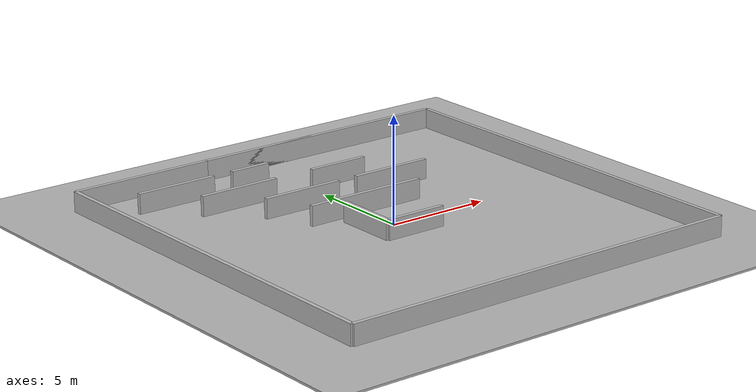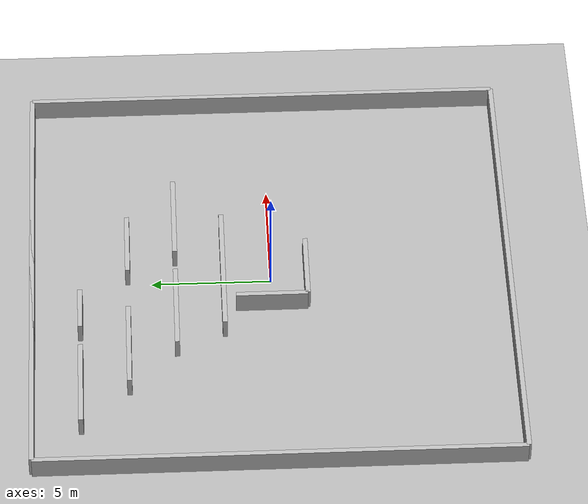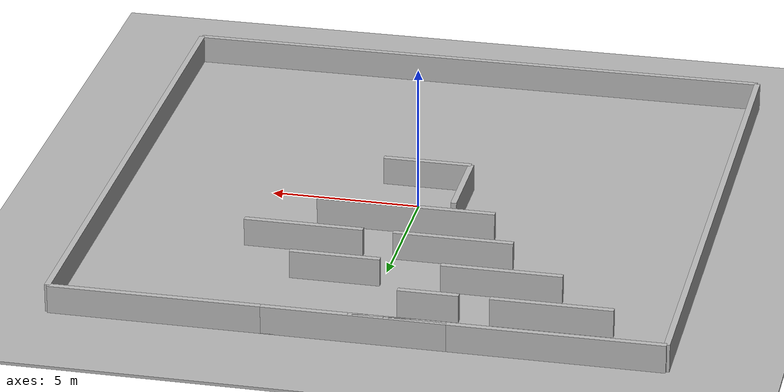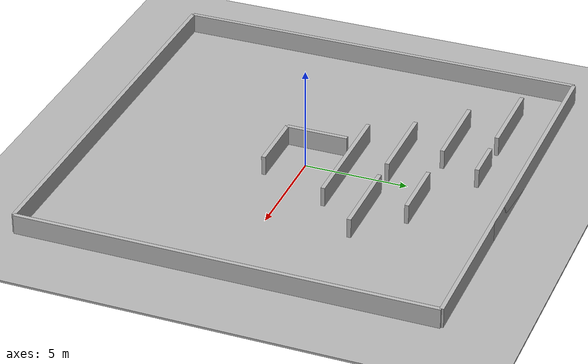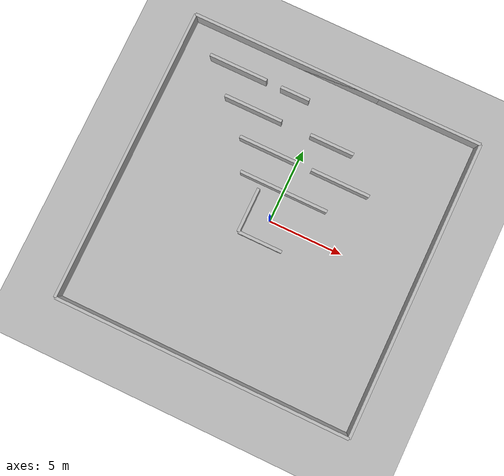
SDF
<?xml version="1.0"?>
<sdf version="1.8">
  <world name="maze_world">
  <plugin filename="libignition-gazebo-imu-system.so"
        name="ignition::gazebo::systems::Imu">
  </plugin>

    <plugin
      filename="libignition-gazebo-sensors-system.so"
      name="ignition::gazebo::systems::Sensors">
      <render_engine>ogre2</render_engine>
    </plugin>

  <plugin
        filename="ignition-gazebo-physics-system"
        name="ignition::gazebo::systems::Physics">
    </plugin>

    <plugin
        filename="ignition-gazebo-scene-broadcaster-system"
        name="ignition::gazebo::systems::SceneBroadcaster">
    </plugin>

    <plugin filename="ignition-gazebo-user-commands-system"
        name="ignition::gazebo::systems::UserCommands"/>

    <model name="ground_plane">
      <static>true</static>
      <link name="link">
        <collision name="collision">
          <geometry>
            <box>
              <size>100 100 0.1</size>
            </box>
          </geometry>
        </collision>
        <visual name="visual">
          <geometry>
            <box>
              <size>100 100 0.1</size>
            </box>
          </geometry>
          <material>
            <ambient>0.7 0.7 0.7 1.0</ambient>
            <diffuse>0.7 0.7 0.7 1.0</diffuse>
          </material>
        </visual>
      </link>
    </model>

<light name="sun" type="directional">
  <pose>0 0 100 0 0 0</pose>
  <diffuse>1 1 1 1</diffuse>
  <specular>0.5 0.5 0.5 1</specular>
  <attenuation>
    <constant>0.0</constant>
    <linear>0.0</linear>
    <quadratic>0.0</quadratic>
  </attenuation>
  <direction>-0.5 -0.5 -1</direction>
</light>

    <!-- Outer frame -->
    <model name="outer_top">
      <static>true</static>
      <link name="link">
        <pose>0 10 0.5 0 0 0</pose>
        <collision name="col"><geometry><box><size>20 0.2 1</size></box></geometry></collision>
        <visual name="vis"><geometry><box><size>20 0.2 1</size></box></geometry></visual>
      </link>
    </model>

    <model name="outer_bottom">
      <static>true</static>
      <link name="link">
        <pose>0 -10 0.5 0 0 0</pose>
        <collision name="col"><geometry><box><size>20 0.2 1</size></box></geometry></collision>
        <visual name="vis"><geometry><box><size>20 0.2 1</size></box></geometry></visual>
      </link>
    </model>

    <model name="outer_left">
      <static>true</static>
      <link name="link">
        <pose>-10 0 0.5 0 0 0</pose>
        <collision name="col"><geometry><box><size>0.2 20 1</size></box></geometry></collision>
        <visual name="vis"><geometry><box><size>0.2 20 1</size></box></geometry></visual>
      </link>
    </model>

    <model name="outer_right">
      <static>true</static>
      <link name="link">
        <pose>10 0 0.5 0 0 0</pose>
        <collision name="col"><geometry><box><size>0.2 20 1</size></box></geometry></collision>
        <visual name="vis"><geometry><box><size>0.2 20 1</size></box></geometry></visual>
      </link>
    </model>

    <!-- Start room (origin) -->
    <model name="start_wall_back">
      <static>true</static>
      <link name="link">
        <pose>0 -1.5 0.5 0 0 0</pose>
        <collision name="col"><geometry><box><size>3 0.2 1</size></box></geometry></collision>
        <visual name="vis"><geometry><box><size>3 0.2 1</size></box></geometry></visual>
      </link>
    </model>

    <model name="start_wall_left">
      <static>true</static>
      <link name="link">
        <pose>-1.5 0 0.5 0 0 0</pose>
        <collision name="col"><geometry><box><size>0.2 3 1</size></box></geometry></collision>
        <visual name="vis"><geometry><box><size>0.2 3 1</size></box></geometry></visual>
      </link>
    </model>

    <!-- First fork -->
    <model name="path_straight">
      <static>true</static>
      <link name="link">
        <pose>0 2 0.5 0 0 0</pose>
        <collision name="col"><geometry><box><size>6 0.2 1</size></box></geometry></collision>
        <visual name="vis"><geometry><box><size>6 0.2 1</size></box></geometry></visual>
      </link>
    </model>

    <model name="path_left_block">
      <static>true</static>
      <link name="link">
        <pose>-2 4 0.5 0 0 1.57</pose>
        <collision name="col"><geometry><box><size>0.2 4 1</size></box></geometry></collision>
        <visual name="vis"><geometry><box><size>0.2 4 1</size></box></geometry></visual>
      </link>
    </model>

    <!-- Dead end (right) -->
    <model name="deadend_right">
      <static>true</static>
      <link name="link">
        <pose>3 4 0.5 0 0 1.57</pose>
        <collision name="col"><geometry><box><size>0.2 4 1</size></box></geometry></collision>
        <visual name="vis"><geometry><box><size>0.2 4 1</size></box></geometry></visual>
      </link>
    </model>

    <model name="deadend_wall_top">
      <static>true</static>
      <link name="link">
        <pose>1.5 6 0.5 0 0 0</pose>
        <collision name="col"><geometry><box><size>3 0.2 1</size></box></geometry></collision>
        <visual name="vis"><geometry><box><size>3 0.2 1</size></box></geometry></visual>
      </link>
    </model>

    <!-- Left path deeper -->
    <model name="long_left_passage">
      <static>true</static>
      <link name="link">
        <pose>-4 6 0.5 0 0 0</pose>
        <collision name="col"><geometry><box><size>4 0.2 1</size></box></geometry></collision>
        <visual name="vis"><geometry><box><size>4 0.2 1</size></box></geometry></visual>
      </link>
    </model>

    <model name="left_block_end">
      <static>true</static>
      <link name="link">
        <pose>-6 8 0.5 0 0 1.57</pose>
        <collision name="col"><geometry><box><size>0.2 4 1</size></box></geometry></collision>
        <visual name="vis"><geometry><box><size>0.2 4 1</size></box></geometry></visual>
      </link>
    </model>

    <!-- Trap section -->
    <model name="trap_half_box">
      <static>true</static>
      <link name="link">
        <pose>-2 8 0.5 0 0 0</pose>
        <collision name="col"><geometry><box><size>2 0.2 1</size></box></geometry></collision>
        <visual name="vis"><geometry><box><size>2 0.2 1</size></box></geometry></visual>
      </link>
    </model>

    <!-- Exit path -->
    <model name="exit_path">
      <static>true</static>
      <link name="link">
        <pose>0 10 0.5 0 0 0</pose>
        <collision name="col"><geometry><box><size>6 0.2 1</size></box></geometry></collision>
        <visual name="vis"><geometry><box><size>6 0.2 1</size></box></geometry></visual>
      </link>
    </model>
    <!-- Robot will be spawned separately via ROS2 -->

  </world>
</sdf>
